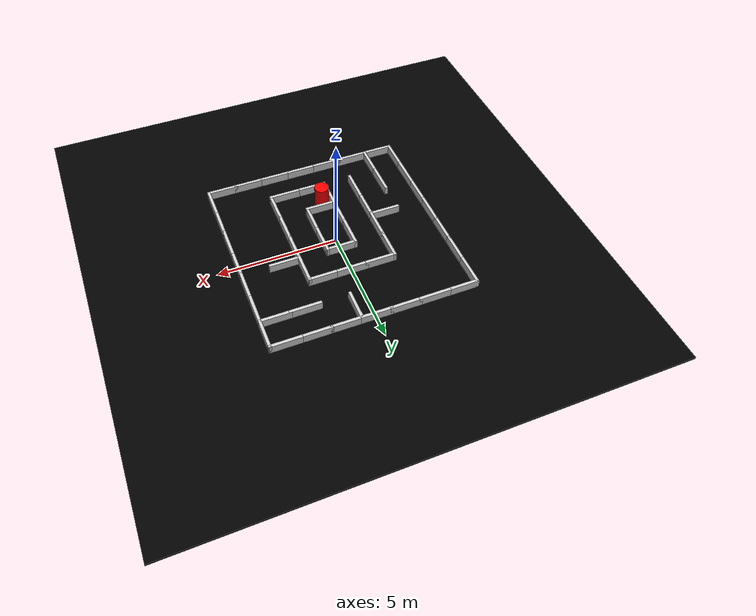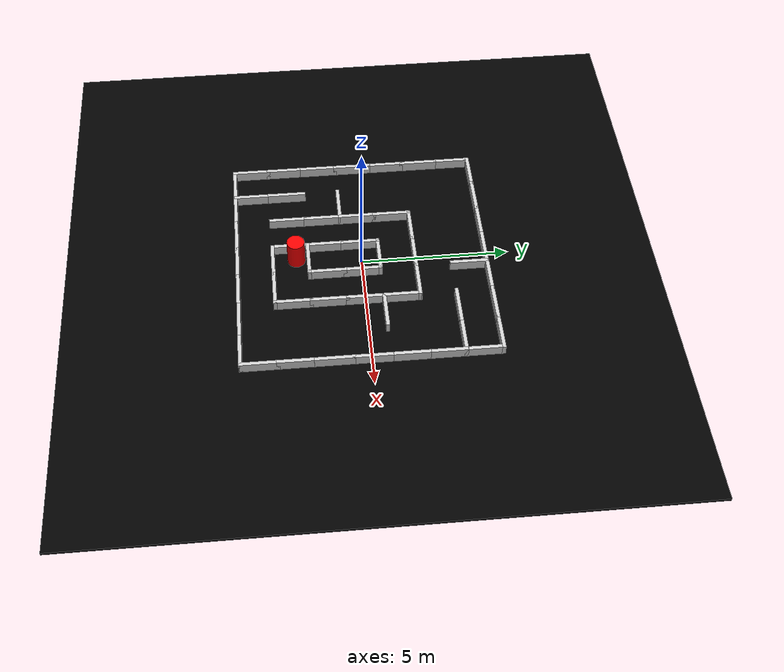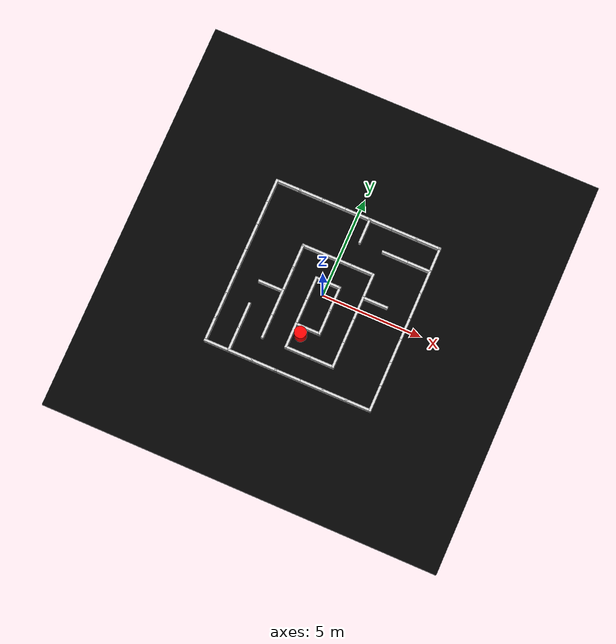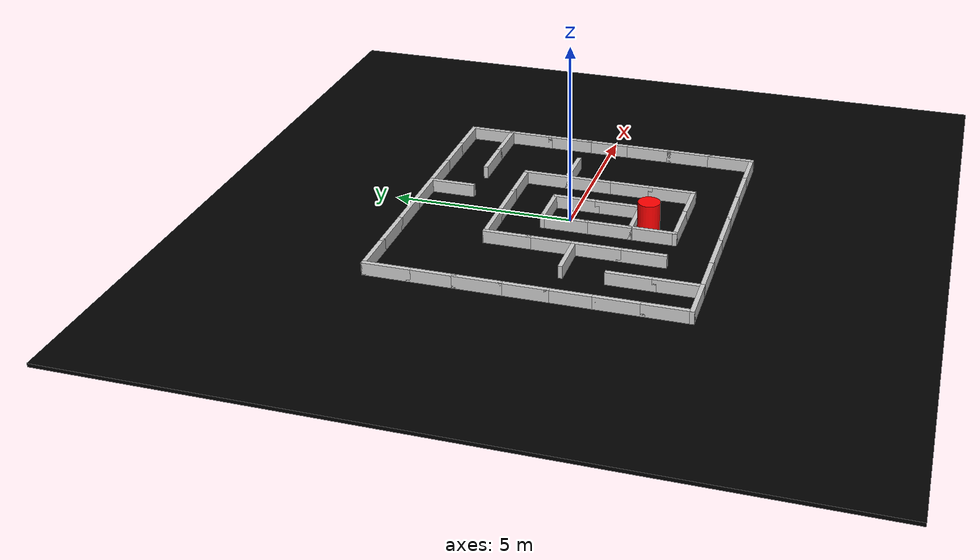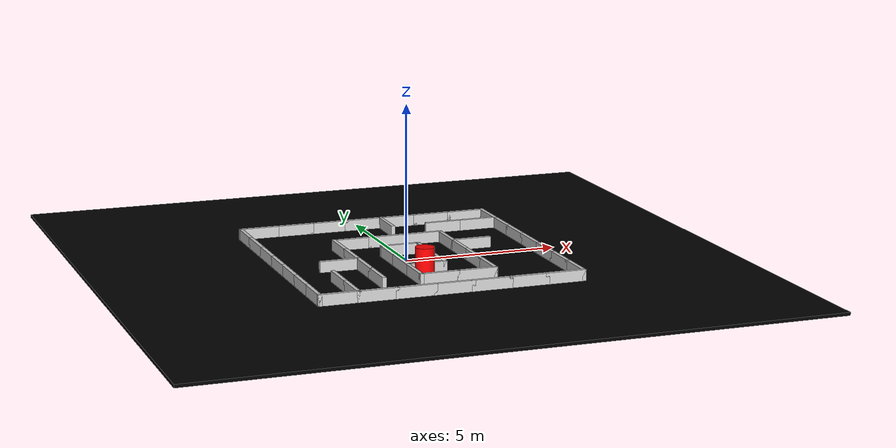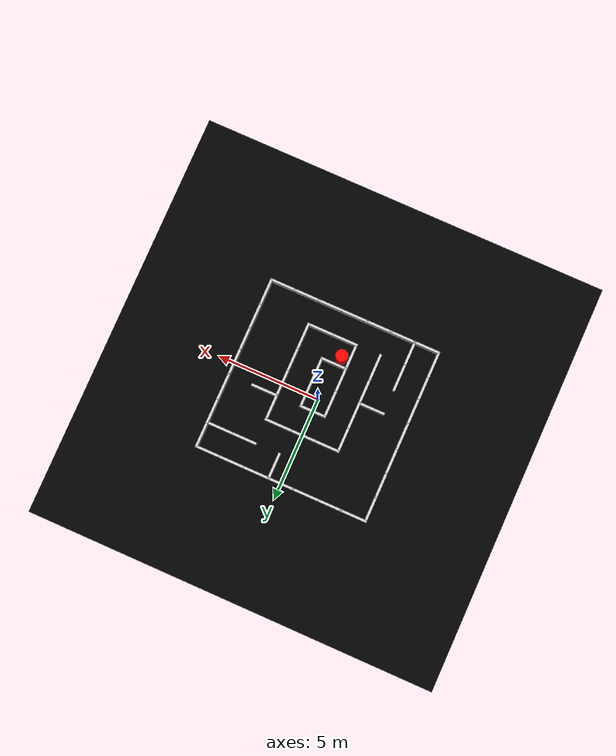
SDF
<?xml version="1.0"?>
<sdf version="1.6">
  <world name="maze_world">

    <!-- Black Floor -->
    <model name="black_floor">
      <static>true</static>
      <pose>0 0 0 0 0 0</pose>
      <link name="link">
        <collision name="collision">
          <geometry>
            <box>
              <size>20 20 0.1</size>
            </box>
          </geometry>
        </collision>
        <visual name="visual">
          <geometry>
            <box>
              <size>20 20 0.1</size>
            </box>
          </geometry>
          <material>
            <ambient>0 0 0 1</ambient>
            <diffuse>0 0 0 1</diffuse>
          </material>
        </visual>
      </link>
    </model>

    <model name="maze_grid">
      <static>true</static>
      <link name="h_0_0">
        <pose>-3.600 -4.200 0.200 0 0 0.000000</pose>
        <collision name="c">
          <geometry><box><size>1.320 0.120 0.400</size></box></geometry>
        </collision>
        <visual name="v">
          <geometry><box><size>1.320 0.120 0.400</size></box></geometry>
          <material>
            <ambient>0.6 0.6 0.6 1</ambient>
            <diffuse>0.8 0.8 0.8 1</diffuse>
          </material>
        </visual>
      </link>
      <link name="h_0_1">
        <pose>-2.400 -4.200 0.200 0 0 0.000000</pose>
        <collision name="c">
          <geometry><box><size>1.320 0.120 0.400</size></box></geometry>
        </collision>
        <visual name="v">
          <geometry><box><size>1.320 0.120 0.400</size></box></geometry>
          <material>
            <ambient>0.6 0.6 0.6 1</ambient>
            <diffuse>0.8 0.8 0.8 1</diffuse>
          </material>
        </visual>
      </link>
      <link name="h_0_2">
        <pose>-1.200 -4.200 0.200 0 0 0.000000</pose>
        <collision name="c">
          <geometry><box><size>1.320 0.120 0.400</size></box></geometry>
        </collision>
        <visual name="v">
          <geometry><box><size>1.320 0.120 0.400</size></box></geometry>
          <material>
            <ambient>0.6 0.6 0.6 1</ambient>
            <diffuse>0.8 0.8 0.8 1</diffuse>
          </material>
        </visual>
      </link>
      <link name="h_0_3">
        <pose>0.000 -4.200 0.200 0 0 0.000000</pose>
        <collision name="c">
          <geometry><box><size>1.320 0.120 0.400</size></box></geometry>
        </collision>
        <visual name="v">
          <geometry><box><size>1.320 0.120 0.400</size></box></geometry>
          <material>
            <ambient>0.6 0.6 0.6 1</ambient>
            <diffuse>0.8 0.8 0.8 1</diffuse>
          </material>
        </visual>
      </link>
      <link name="h_0_4">
        <pose>1.200 -4.200 0.200 0 0 0.000000</pose>
        <collision name="c">
          <geometry><box><size>1.320 0.120 0.400</size></box></geometry>
        </collision>
        <visual name="v">
          <geometry><box><size>1.320 0.120 0.400</size></box></geometry>
          <material>
            <ambient>0.6 0.6 0.6 1</ambient>
            <diffuse>0.8 0.8 0.8 1</diffuse>
          </material>
        </visual>
      </link>
      <link name="h_0_5">
        <pose>2.400 -4.200 0.200 0 0 0.000000</pose>
        <collision name="c">
          <geometry><box><size>1.320 0.120 0.400</size></box></geometry>
        </collision>
        <visual name="v">
          <geometry><box><size>1.320 0.120 0.400</size></box></geometry>
          <material>
            <ambient>0.6 0.6 0.6 1</ambient>
            <diffuse>0.8 0.8 0.8 1</diffuse>
          </material>
        </visual>
      </link>
      <link name="h_0_6">
        <pose>3.600 -4.200 0.200 0 0 0.000000</pose>
        <collision name="c">
          <geometry><box><size>1.320 0.120 0.400</size></box></geometry>
        </collision>
        <visual name="v">
          <geometry><box><size>1.320 0.120 0.400</size></box></geometry>
          <material>
            <ambient>0.6 0.6 0.6 1</ambient>
            <diffuse>0.8 0.8 0.8 1</diffuse>
          </material>
        </visual>
      </link>
      <link name="h_1_3">
        <pose>0.000 -3.000 0.200 0 0 0.000000</pose>
        <collision name="c">
          <geometry><box><size>1.320 0.120 0.400</size></box></geometry>
        </collision>
        <visual name="v">
          <geometry><box><size>1.320 0.120 0.400</size></box></geometry>
          <material>
            <ambient>0.6 0.6 0.6 1</ambient>
            <diffuse>0.8 0.8 0.8 1</diffuse>
          </material>
        </visual>
      </link>
      <link name="h_1_4">
        <pose>1.200 -3.000 0.200 0 0 0.000000</pose>
        <collision name="c">
          <geometry><box><size>1.320 0.120 0.400</size></box></geometry>
        </collision>
        <visual name="v">
          <geometry><box><size>1.320 0.120 0.400</size></box></geometry>
          <material>
            <ambient>0.6 0.6 0.6 1</ambient>
            <diffuse>0.8 0.8 0.8 1</diffuse>
          </material>
        </visual>
      </link>
      <link name="h_2_3">
        <pose>0.000 -1.800 0.200 0 0 0.000000</pose>
        <collision name="c">
          <geometry><box><size>1.320 0.120 0.400</size></box></geometry>
        </collision>
        <visual name="v">
          <geometry><box><size>1.320 0.120 0.400</size></box></geometry>
          <material>
            <ambient>0.6 0.6 0.6 1</ambient>
            <diffuse>0.8 0.8 0.8 1</diffuse>
          </material>
        </visual>
      </link>
      <link name="h_3_1">
        <pose>-2.400 -0.600 0.200 0 0 0.000000</pose>
        <collision name="c">
          <geometry><box><size>1.320 0.120 0.400</size></box></geometry>
        </collision>
        <visual name="v">
          <geometry><box><size>1.320 0.120 0.400</size></box></geometry>
          <material>
            <ambient>0.6 0.6 0.6 1</ambient>
            <diffuse>0.8 0.8 0.8 1</diffuse>
          </material>
        </visual>
      </link>
      <link name="h_4_3">
        <pose>0.000 0.600 0.200 0 0 0.000000</pose>
        <collision name="c">
          <geometry><box><size>1.320 0.120 0.400</size></box></geometry>
        </collision>
        <visual name="v">
          <geometry><box><size>1.320 0.120 0.400</size></box></geometry>
          <material>
            <ambient>0.6 0.6 0.6 1</ambient>
            <diffuse>0.8 0.8 0.8 1</diffuse>
          </material>
        </visual>
      </link>
      <link name="h_4_5">
        <pose>2.400 0.600 0.200 0 0 0.000000</pose>
        <collision name="c">
          <geometry><box><size>1.320 0.120 0.400</size></box></geometry>
        </collision>
        <visual name="v">
          <geometry><box><size>1.320 0.120 0.400</size></box></geometry>
          <material>
            <ambient>0.6 0.6 0.6 1</ambient>
            <diffuse>0.8 0.8 0.8 1</diffuse>
          </material>
        </visual>
      </link>
      <link name="h_5_2">
        <pose>-1.200 1.800 0.200 0 0 0.000000</pose>
        <collision name="c">
          <geometry><box><size>1.320 0.120 0.400</size></box></geometry>
        </collision>
        <visual name="v">
          <geometry><box><size>1.320 0.120 0.400</size></box></geometry>
          <material>
            <ambient>0.6 0.6 0.6 1</ambient>
            <diffuse>0.8 0.8 0.8 1</diffuse>
          </material>
        </visual>
      </link>
      <link name="h_5_3">
        <pose>0.000 1.800 0.200 0 0 0.000000</pose>
        <collision name="c">
          <geometry><box><size>1.320 0.120 0.400</size></box></geometry>
        </collision>
        <visual name="v">
          <geometry><box><size>1.320 0.120 0.400</size></box></geometry>
          <material>
            <ambient>0.6 0.6 0.6 1</ambient>
            <diffuse>0.8 0.8 0.8 1</diffuse>
          </material>
        </visual>
      </link>
      <link name="h_5_4">
        <pose>1.200 1.800 0.200 0 0 0.000000</pose>
        <collision name="c">
          <geometry><box><size>1.320 0.120 0.400</size></box></geometry>
        </collision>
        <visual name="v">
          <geometry><box><size>1.320 0.120 0.400</size></box></geometry>
          <material>
            <ambient>0.6 0.6 0.6 1</ambient>
            <diffuse>0.8 0.8 0.8 1</diffuse>
          </material>
        </visual>
      </link>
      <link name="h_6_5">
        <pose>2.400 3.000 0.200 0 0 0.000000</pose>
        <collision name="c">
          <geometry><box><size>1.320 0.120 0.400</size></box></geometry>
        </collision>
        <visual name="v">
          <geometry><box><size>1.320 0.120 0.400</size></box></geometry>
          <material>
            <ambient>0.6 0.6 0.6 1</ambient>
            <diffuse>0.8 0.8 0.8 1</diffuse>
          </material>
        </visual>
      </link>
      <link name="h_6_6">
        <pose>3.600 3.000 0.200 0 0 0.000000</pose>
        <collision name="c">
          <geometry><box><size>1.320 0.120 0.400</size></box></geometry>
        </collision>
        <visual name="v">
          <geometry><box><size>1.320 0.120 0.400</size></box></geometry>
          <material>
            <ambient>0.6 0.6 0.6 1</ambient>
            <diffuse>0.8 0.8 0.8 1</diffuse>
          </material>
        </visual>
      </link>
      <link name="h_7_0">
        <pose>-3.600 4.200 0.200 0 0 0.000000</pose>
        <collision name="c">
          <geometry><box><size>1.320 0.120 0.400</size></box></geometry>
        </collision>
        <visual name="v">
          <geometry><box><size>1.320 0.120 0.400</size></box></geometry>
          <material>
            <ambient>0.6 0.6 0.6 1</ambient>
            <diffuse>0.8 0.8 0.8 1</diffuse>
          </material>
        </visual>
      </link>
      <link name="h_7_1">
        <pose>-2.400 4.200 0.200 0 0 0.000000</pose>
        <collision name="c">
          <geometry><box><size>1.320 0.120 0.400</size></box></geometry>
        </collision>
        <visual name="v">
          <geometry><box><size>1.320 0.120 0.400</size></box></geometry>
          <material>
            <ambient>0.6 0.6 0.6 1</ambient>
            <diffuse>0.8 0.8 0.8 1</diffuse>
          </material>
        </visual>
      </link>
      <link name="h_7_2">
        <pose>-1.200 4.200 0.200 0 0 0.000000</pose>
        <collision name="c">
          <geometry><box><size>1.320 0.120 0.400</size></box></geometry>
        </collision>
        <visual name="v">
          <geometry><box><size>1.320 0.120 0.400</size></box></geometry>
          <material>
            <ambient>0.6 0.6 0.6 1</ambient>
            <diffuse>0.8 0.8 0.8 1</diffuse>
          </material>
        </visual>
      </link>
      <link name="h_7_3">
        <pose>0.000 4.200 0.200 0 0 0.000000</pose>
        <collision name="c">
          <geometry><box><size>1.320 0.120 0.400</size></box></geometry>
        </collision>
        <visual name="v">
          <geometry><box><size>1.320 0.120 0.400</size></box></geometry>
          <material>
            <ambient>0.6 0.6 0.6 1</ambient>
            <diffuse>0.8 0.8 0.8 1</diffuse>
          </material>
        </visual>
      </link>
      <link name="h_7_4">
        <pose>1.200 4.200 0.200 0 0 0.000000</pose>
        <collision name="c">
          <geometry><box><size>1.320 0.120 0.400</size></box></geometry>
        </collision>
        <visual name="v">
          <geometry><box><size>1.320 0.120 0.400</size></box></geometry>
          <material>
            <ambient>0.6 0.6 0.6 1</ambient>
            <diffuse>0.8 0.8 0.8 1</diffuse>
          </material>
        </visual>
      </link>
      <link name="h_7_5">
        <pose>2.400 4.200 0.200 0 0 0.000000</pose>
        <collision name="c">
          <geometry><box><size>1.320 0.120 0.400</size></box></geometry>
        </collision>
        <visual name="v">
          <geometry><box><size>1.320 0.120 0.400</size></box></geometry>
          <material>
            <ambient>0.6 0.6 0.6 1</ambient>
            <diffuse>0.8 0.8 0.8 1</diffuse>
          </material>
        </visual>
      </link>
      <link name="h_7_6">
        <pose>3.600 4.200 0.200 0 0 0.000000</pose>
        <collision name="c">
          <geometry><box><size>1.320 0.120 0.400</size></box></geometry>
        </collision>
        <visual name="v">
          <geometry><box><size>1.320 0.120 0.400</size></box></geometry>
          <material>
            <ambient>0.6 0.6 0.6 1</ambient>
            <diffuse>0.8 0.8 0.8 1</diffuse>
          </material>
        </visual>
      </link>
      <link name="v_0_0">
        <pose>-4.200 -3.600 0.200 0 0 1.570796</pose>
        <collision name="c">
          <geometry><box><size>1.320 0.120 0.400</size></box></geometry>
        </collision>
        <visual name="v">
          <geometry><box><size>1.320 0.120 0.400</size></box></geometry>
          <material>
            <ambient>0.6 0.6 0.6 1</ambient>
            <diffuse>0.8 0.8 0.8 1</diffuse>
          </material>
        </visual>
      </link>
      <link name="v_0_1">
        <pose>-4.200 -2.400 0.200 0 0 1.570796</pose>
        <collision name="c">
          <geometry><box><size>1.320 0.120 0.400</size></box></geometry>
        </collision>
        <visual name="v">
          <geometry><box><size>1.320 0.120 0.400</size></box></geometry>
          <material>
            <ambient>0.6 0.6 0.6 1</ambient>
            <diffuse>0.8 0.8 0.8 1</diffuse>
          </material>
        </visual>
      </link>
      <link name="v_0_2">
        <pose>-4.200 -1.200 0.200 0 0 1.570796</pose>
        <collision name="c">
          <geometry><box><size>1.320 0.120 0.400</size></box></geometry>
        </collision>
        <visual name="v">
          <geometry><box><size>1.320 0.120 0.400</size></box></geometry>
          <material>
            <ambient>0.6 0.6 0.6 1</ambient>
            <diffuse>0.8 0.8 0.8 1</diffuse>
          </material>
        </visual>
      </link>
      <link name="v_0_3">
        <pose>-4.200 0.000 0.200 0 0 1.570796</pose>
        <collision name="c">
          <geometry><box><size>1.320 0.120 0.400</size></box></geometry>
        </collision>
        <visual name="v">
          <geometry><box><size>1.320 0.120 0.400</size></box></geometry>
          <material>
            <ambient>0.6 0.6 0.6 1</ambient>
            <diffuse>0.8 0.8 0.8 1</diffuse>
          </material>
        </visual>
      </link>
      <link name="v_0_4">
        <pose>-4.200 1.200 0.200 0 0 1.570796</pose>
        <collision name="c">
          <geometry><box><size>1.320 0.120 0.400</size></box></geometry>
        </collision>
        <visual name="v">
          <geometry><box><size>1.320 0.120 0.400</size></box></geometry>
          <material>
            <ambient>0.6 0.6 0.6 1</ambient>
            <diffuse>0.8 0.8 0.8 1</diffuse>
          </material>
        </visual>
      </link>
      <link name="v_0_5">
        <pose>-4.200 2.400 0.200 0 0 1.570796</pose>
        <collision name="c">
          <geometry><box><size>1.320 0.120 0.400</size></box></geometry>
        </collision>
        <visual name="v">
          <geometry><box><size>1.320 0.120 0.400</size></box></geometry>
          <material>
            <ambient>0.6 0.6 0.6 1</ambient>
            <diffuse>0.8 0.8 0.8 1</diffuse>
          </material>
        </visual>
      </link>
      <link name="v_0_6">
        <pose>-4.200 3.600 0.200 0 0 1.570796</pose>
        <collision name="c">
          <geometry><box><size>1.320 0.120 0.400</size></box></geometry>
        </collision>
        <visual name="v">
          <geometry><box><size>1.320 0.120 0.400</size></box></geometry>
          <material>
            <ambient>0.6 0.6 0.6 1</ambient>
            <diffuse>0.8 0.8 0.8 1</diffuse>
          </material>
        </visual>
      </link>
      <link name="v_1_0">
        <pose>-3.000 -3.600 0.200 0 0 1.570796</pose>
        <collision name="c">
          <geometry><box><size>1.320 0.120 0.400</size></box></geometry>
        </collision>
        <visual name="v">
          <geometry><box><size>1.320 0.120 0.400</size></box></geometry>
          <material>
            <ambient>0.6 0.6 0.6 1</ambient>
            <diffuse>0.8 0.8 0.8 1</diffuse>
          </material>
        </visual>
      </link>
      <link name="v_1_1">
        <pose>-3.000 -2.400 0.200 0 0 1.570796</pose>
        <collision name="c">
          <geometry><box><size>1.320 0.120 0.400</size></box></geometry>
        </collision>
        <visual name="v">
          <geometry><box><size>1.320 0.120 0.400</size></box></geometry>
          <material>
            <ambient>0.6 0.6 0.6 1</ambient>
            <diffuse>0.8 0.8 0.8 1</diffuse>
          </material>
        </visual>
      </link>
      <link name="v_2_1">
        <pose>-1.800 -2.400 0.200 0 0 1.570796</pose>
        <collision name="c">
          <geometry><box><size>1.320 0.120 0.400</size></box></geometry>
        </collision>
        <visual name="v">
          <geometry><box><size>1.320 0.120 0.400</size></box></geometry>
          <material>
            <ambient>0.6 0.6 0.6 1</ambient>
            <diffuse>0.8 0.8 0.8 1</diffuse>
          </material>
        </visual>
      </link>
      <link name="v_2_2">
        <pose>-1.800 -1.200 0.200 0 0 1.570796</pose>
        <collision name="c">
          <geometry><box><size>1.320 0.120 0.400</size></box></geometry>
        </collision>
        <visual name="v">
          <geometry><box><size>1.320 0.120 0.400</size></box></geometry>
          <material>
            <ambient>0.6 0.6 0.6 1</ambient>
            <diffuse>0.8 0.8 0.8 1</diffuse>
          </material>
        </visual>
      </link>
      <link name="v_2_3">
        <pose>-1.800 0.000 0.200 0 0 1.570796</pose>
        <collision name="c">
          <geometry><box><size>1.320 0.120 0.400</size></box></geometry>
        </collision>
        <visual name="v">
          <geometry><box><size>1.320 0.120 0.400</size></box></geometry>
          <material>
            <ambient>0.6 0.6 0.6 1</ambient>
            <diffuse>0.8 0.8 0.8 1</diffuse>
          </material>
        </visual>
      </link>
      <link name="v_2_4">
        <pose>-1.800 1.200 0.200 0 0 1.570796</pose>
        <collision name="c">
          <geometry><box><size>1.320 0.120 0.400</size></box></geometry>
        </collision>
        <visual name="v">
          <geometry><box><size>1.320 0.120 0.400</size></box></geometry>
          <material>
            <ambient>0.6 0.6 0.6 1</ambient>
            <diffuse>0.8 0.8 0.8 1</diffuse>
          </material>
        </visual>
      </link>
      <link name="v_3_1">
        <pose>-0.600 -2.400 0.200 0 0 1.570796</pose>
        <collision name="c">
          <geometry><box><size>1.320 0.120 0.400</size></box></geometry>
        </collision>
        <visual name="v">
          <geometry><box><size>1.320 0.120 0.400</size></box></geometry>
          <material>
            <ambient>0.6 0.6 0.6 1</ambient>
            <diffuse>0.8 0.8 0.8 1</diffuse>
          </material>
        </visual>
      </link>
      <link name="v_3_2">
        <pose>-0.600 -1.200 0.200 0 0 1.570796</pose>
        <collision name="c">
          <geometry><box><size>1.320 0.120 0.400</size></box></geometry>
        </collision>
        <visual name="v">
          <geometry><box><size>1.320 0.120 0.400</size></box></geometry>
          <material>
            <ambient>0.6 0.6 0.6 1</ambient>
            <diffuse>0.8 0.8 0.8 1</diffuse>
          </material>
        </visual>
      </link>
      <link name="v_3_3">
        <pose>-0.600 0.000 0.200 0 0 1.570796</pose>
        <collision name="c">
          <geometry><box><size>1.320 0.120 0.400</size></box></geometry>
        </collision>
        <visual name="v">
          <geometry><box><size>1.320 0.120 0.400</size></box></geometry>
          <material>
            <ambient>0.6 0.6 0.6 1</ambient>
            <diffuse>0.8 0.8 0.8 1</diffuse>
          </material>
        </visual>
      </link>
      <link name="v_4_2">
        <pose>0.600 -1.200 0.200 0 0 1.570796</pose>
        <collision name="c">
          <geometry><box><size>1.320 0.120 0.400</size></box></geometry>
        </collision>
        <visual name="v">
          <geometry><box><size>1.320 0.120 0.400</size></box></geometry>
          <material>
            <ambient>0.6 0.6 0.6 1</ambient>
            <diffuse>0.8 0.8 0.8 1</diffuse>
          </material>
        </visual>
      </link>
      <link name="v_4_3">
        <pose>0.600 0.000 0.200 0 0 1.570796</pose>
        <collision name="c">
          <geometry><box><size>1.320 0.120 0.400</size></box></geometry>
        </collision>
        <visual name="v">
          <geometry><box><size>1.320 0.120 0.400</size></box></geometry>
          <material>
            <ambient>0.6 0.6 0.6 1</ambient>
            <diffuse>0.8 0.8 0.8 1</diffuse>
          </material>
        </visual>
      </link>
      <link name="v_4_6">
        <pose>0.600 3.600 0.200 0 0 1.570796</pose>
        <collision name="c">
          <geometry><box><size>1.320 0.120 0.400</size></box></geometry>
        </collision>
        <visual name="v">
          <geometry><box><size>1.320 0.120 0.400</size></box></geometry>
          <material>
            <ambient>0.6 0.6 0.6 1</ambient>
            <diffuse>0.8 0.8 0.8 1</diffuse>
          </material>
        </visual>
      </link>
      <link name="v_5_1">
        <pose>1.800 -2.400 0.200 0 0 1.570796</pose>
        <collision name="c">
          <geometry><box><size>1.320 0.120 0.400</size></box></geometry>
        </collision>
        <visual name="v">
          <geometry><box><size>1.320 0.120 0.400</size></box></geometry>
          <material>
            <ambient>0.6 0.6 0.6 1</ambient>
            <diffuse>0.8 0.8 0.8 1</diffuse>
          </material>
        </visual>
      </link>
      <link name="v_5_2">
        <pose>1.800 -1.200 0.200 0 0 1.570796</pose>
        <collision name="c">
          <geometry><box><size>1.320 0.120 0.400</size></box></geometry>
        </collision>
        <visual name="v">
          <geometry><box><size>1.320 0.120 0.400</size></box></geometry>
          <material>
            <ambient>0.6 0.6 0.6 1</ambient>
            <diffuse>0.8 0.8 0.8 1</diffuse>
          </material>
        </visual>
      </link>
      <link name="v_5_3">
        <pose>1.800 0.000 0.200 0 0 1.570796</pose>
        <collision name="c">
          <geometry><box><size>1.320 0.120 0.400</size></box></geometry>
        </collision>
        <visual name="v">
          <geometry><box><size>1.320 0.120 0.400</size></box></geometry>
          <material>
            <ambient>0.6 0.6 0.6 1</ambient>
            <diffuse>0.8 0.8 0.8 1</diffuse>
          </material>
        </visual>
      </link>
      <link name="v_5_4">
        <pose>1.800 1.200 0.200 0 0 1.570796</pose>
        <collision name="c">
          <geometry><box><size>1.320 0.120 0.400</size></box></geometry>
        </collision>
        <visual name="v">
          <geometry><box><size>1.320 0.120 0.400</size></box></geometry>
          <material>
            <ambient>0.6 0.6 0.6 1</ambient>
            <diffuse>0.8 0.8 0.8 1</diffuse>
          </material>
        </visual>
      </link>
      <link name="v_7_0">
        <pose>4.200 -3.600 0.200 0 0 1.570796</pose>
        <collision name="c">
          <geometry><box><size>1.320 0.120 0.400</size></box></geometry>
        </collision>
        <visual name="v">
          <geometry><box><size>1.320 0.120 0.400</size></box></geometry>
          <material>
            <ambient>0.6 0.6 0.6 1</ambient>
            <diffuse>0.8 0.8 0.8 1</diffuse>
          </material>
        </visual>
      </link>
      <link name="v_7_1">
        <pose>4.200 -2.400 0.200 0 0 1.570796</pose>
        <collision name="c">
          <geometry><box><size>1.320 0.120 0.400</size></box></geometry>
        </collision>
        <visual name="v">
          <geometry><box><size>1.320 0.120 0.400</size></box></geometry>
          <material>
            <ambient>0.6 0.6 0.6 1</ambient>
            <diffuse>0.8 0.8 0.8 1</diffuse>
          </material>
        </visual>
      </link>
      <link name="v_7_2">
        <pose>4.200 -1.200 0.200 0 0 1.570796</pose>
        <collision name="c">
          <geometry><box><size>1.320 0.120 0.400</size></box></geometry>
        </collision>
        <visual name="v">
          <geometry><box><size>1.320 0.120 0.400</size></box></geometry>
          <material>
            <ambient>0.6 0.6 0.6 1</ambient>
            <diffuse>0.8 0.8 0.8 1</diffuse>
          </material>
        </visual>
      </link>
      <link name="v_7_3">
        <pose>4.200 0.000 0.200 0 0 1.570796</pose>
        <collision name="c">
          <geometry><box><size>1.320 0.120 0.400</size></box></geometry>
        </collision>
        <visual name="v">
          <geometry><box><size>1.320 0.120 0.400</size></box></geometry>
          <material>
            <ambient>0.6 0.6 0.6 1</ambient>
            <diffuse>0.8 0.8 0.8 1</diffuse>
          </material>
        </visual>
      </link>
      <link name="v_7_4">
        <pose>4.200 1.200 0.200 0 0 1.570796</pose>
        <collision name="c">
          <geometry><box><size>1.320 0.120 0.400</size></box></geometry>
        </collision>
        <visual name="v">
          <geometry><box><size>1.320 0.120 0.400</size></box></geometry>
          <material>
            <ambient>0.6 0.6 0.6 1</ambient>
            <diffuse>0.8 0.8 0.8 1</diffuse>
          </material>
        </visual>
      </link>
      <link name="v_7_5">
        <pose>4.200 2.400 0.200 0 0 1.570796</pose>
        <collision name="c">
          <geometry><box><size>1.320 0.120 0.400</size></box></geometry>
        </collision>
        <visual name="v">
          <geometry><box><size>1.320 0.120 0.400</size></box></geometry>
          <material>
            <ambient>0.6 0.6 0.6 1</ambient>
            <diffuse>0.8 0.8 0.8 1</diffuse>
          </material>
        </visual>
      </link>
      <link name="v_7_6">
        <pose>4.200 3.600 0.200 0 0 1.570796</pose>
        <collision name="c">
          <geometry><box><size>1.320 0.120 0.400</size></box></geometry>
        </collision>
        <visual name="v">
          <geometry><box><size>1.320 0.120 0.400</size></box></geometry>
          <material>
            <ambient>0.6 0.6 0.6 1</ambient>
            <diffuse>0.8 0.8 0.8 1</diffuse>
          </material>
        </visual>
      </link>
    </model>

    <!-- Goal (Red Cylinder) -->
    <model name="goal">
      <static>true</static>
      <pose>-0.2 -2.2 0.5 0 0 0</pose>
      <link name="link">
        <collision name="collision">
          <geometry>
            <cylinder>
              <radius>0.3</radius>
              <length>1</length>
            </cylinder>
          </geometry>
        </collision>
        <visual name="visual">
          <geometry>
            <cylinder>
              <radius>0.3</radius>
              <length>1</length>
            </cylinder>
          </geometry>
          <material>
            <ambient>1 0 0 1</ambient>
            <diffuse>1 0 0 1</diffuse>
          </material>
        </visual>
      </link>
    </model>

    <!-- Required Gazebo Plugins -->
    <plugin filename="gz-sim-physics-system" name="gz::sim::systems::Physics"/>
    <plugin filename="gz-sim-user-commands-system" name="gz::sim::systems::UserCommands"/>
    <plugin filename="gz-sim-scene-broadcaster-system" name="gz::sim::systems::SceneBroadcaster"/>
    <plugin filename="gz-sim-sensors-system" name="gz::sim::systems::Sensors">
      <render_engine>ogre2</render_engine>
    </plugin>
    <plugin filename="gz-sim-imu-system" name="gz::sim::systems::Imu"/>

    <!-- Lighting and ground -->
    <include>
      <uri>https://fuel.gazebosim.org/1.0/OpenRobotics/models/Sun</uri>
    </include>

    <scene>
      <shadows>false</shadows>
    </scene>

  </world>
</sdf>
